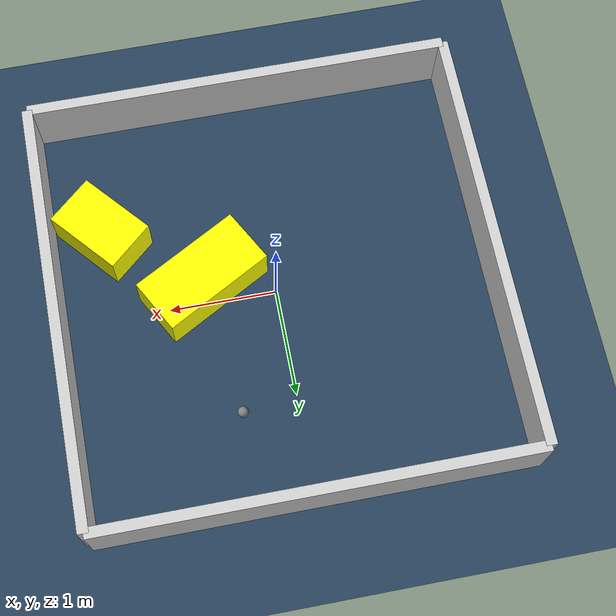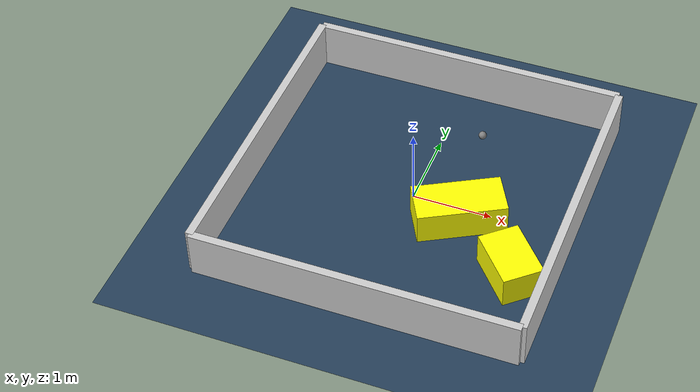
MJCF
<?xml version="1.0" ?>
<mujoco model="generated_environment">
  <option timestep="0.01" integrator="RK4" cone="elliptic"/>
  <default>
    <geom density="1"/>
  </default>
  <asset>
    <texture builtin="gradient" height="3072" rgb1="0.3 0.5 0.7" rgb2="0 0 0" type="skybox" width="512"/>
    <texture builtin="checker" height="300" mark="edge" markrgb="0.8 0.8 0.8" name="groundplane" rgb1="0.2 0.3 0.4" rgb2="0.1 0.2 0.3" type="2d" width="300"/>
    <material name="groundplane" reflectance="0.2" texrepeat="5 5" texture="groundplane" texuniform="true"/>
    <material name="robot" rgba="0.0 1.0 0.0 1"/>
  </asset>
  <worldbody>
    <light dir="0 0 -1" directional="true" pos="0 0 1.5"/>
    <geom condim="4" friction="1.0 0.005 0.001" material="groundplane" name="floor" size="0 0 0.05" type="plane"/>
    <body name="walls">
      <geom name="wall_1" condim="4" pos="-2.0 0.0 0.3" rgba="0.800000011920929 0.800000011920929 0.800000011920929 1.0" size="0.05 2.0 0.3" type="box"/>
      <geom name="wall_2" condim="4" pos="2.0 0.0 0.3" rgba="0.800000011920929 0.800000011920929 0.800000011920929 1.0" size="0.05 2.0 0.3" type="box"/>
      <geom name="wall_3" condim="4" pos="0.0 -2.0 0.3" rgba="0.800000011920929 0.800000011920929 0.800000011920929 1.0" size="2.0 0.05 0.3" type="box"/>
      <geom name="wall_4" condim="4" pos="0.0 2.0 0.3" rgba="0.800000011920929 0.800000011920929 0.800000011920929 1.0" size="2.0 0.05 0.3" type="box"/>
    </body>
    <body name="robot">
      <joint name="joint_x" type="slide" pos="0 0 0" axis="1 0 0"/>
      <joint name="joint_y" type="slide" pos="0 0 0" axis="0 1 0"/>
      <geom name="robot" type="sphere" pos="0.5087567136286597 1.1276347326026595 0.2" size="0.05" mass="5." friction="1.0 0.005 0.0001" condim="4"/>
      <site name="sensor_ball"/>
    </body>
    <body name="obstacle_1_movable">
      <geom name="obstacle_1_movable" condim="4" pos="0.6504879414348497 -0.19103157173219 0.2" euler="0 0 208.83472519261585" friction="1.0 0.005 0.001" rgba="1 1 0 1" size="0.5477559268768286 0.26905341485361156 0.2" type="box" mass="0.1"/>
      <joint type="free"/>
    </body>
    <body name="obstacle_2_movable">
      <geom name="obstacle_2_movable" condim="4" pos="1.4990783818555493 -0.8315467407087481 0.2" euler="0 0 131.2188300640717" friction="1.0 0.005 0.001" rgba="1 1 0 1" size="0.3788735958864756 0.25307883349503124 0.2" type="box" mass="0.1"/>
      <joint type="free"/>
    </body>
  </worldbody>
  <actuator>
    <motor name="actuator_x" joint="joint_x" gear="1" ctrlrange="-1 1"/>
    <motor name="actuator_y" joint="joint_y" gear="1" ctrlrange="-1 1"/>
  </actuator>
</mujoco>
